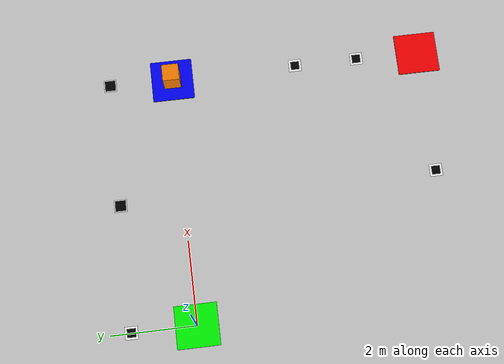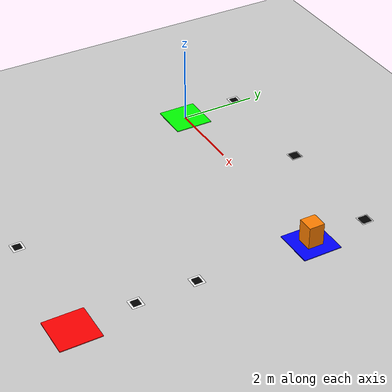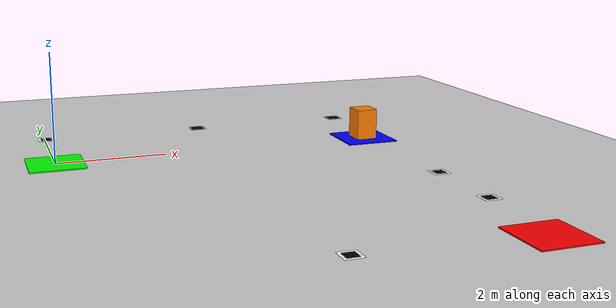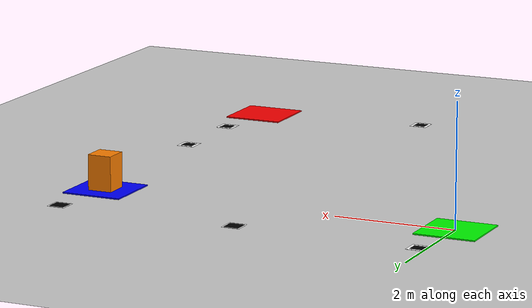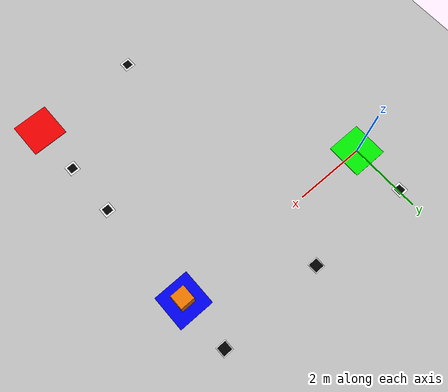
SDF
<?xml version="1.0"?>
<sdf version="1.6">
  <world name="docking_world">

    <!-- Physics -->
    <physics type="ode">
      <real_time_update_rate>1000.0</real_time_update_rate>
      <max_step_size>0.001</max_step_size>
    </physics>

    <!-- Lighting -->
    <include>
      <uri>model://sun</uri>
    </include>

    <!-- Ground -->
    <include>
      <uri>model://ground_plane</uri>
    </include>

    <!-- Charging Station (Green) -->
    <model name="charging_station">
      <static>true</static>
      <pose>0 0 0.01 0 0 0</pose>
      <link name="link">
        <visual name="visual">
          <geometry>
            <box><size>1 1 0.02</size></box>
          </geometry>
          <material>
            <ambient>0 1 0 1</ambient>
            <diffuse>0 1 0 1</diffuse>
          </material>
        </visual>
      </link>
    </model>

    <!-- AprilTag 0 - Charging Station -->
    <model name="tag_0">
      <static>true</static>
      <pose>0 1.5 0.1 0 0 0</pose>
      <link name="link">
        <visual name="white_background">
          <geometry>
            <box><size>0.3 0.3 0.001</size></box>
          </geometry>
          <material>
            <ambient>1 1 1 1</ambient>
            <diffuse>1 1 1 1</diffuse>
          </material>
        </visual>
        <visual name="black_pattern">
          <pose>0 0 0.001 0 0 0</pose>
          <geometry>
            <box><size>0.2 0.2 0.001</size></box>
          </geometry>
          <material>
            <ambient>0 0 0 1</ambient>
            <diffuse>0 0 0 1</diffuse>
          </material>
        </visual>
      </link>
    </model>

    <!-- AprilTag 1 - Path to Dock1 -->
    <model name="tag_1">
      <static>true</static>
      <pose>3 1.5 0.1 0 0 0</pose>
      <link name="link">
        <visual name="visual">
          <geometry>
            <box><size>0.3 0.3 0.001</size></box>
          </geometry>
          <material>
            <ambient>1 1 1 1</ambient>
            <diffuse>1 1 1 1</diffuse>
            <specular>0 0 0 1</specular>
            <emissive>0 0 0 1</emissive>
          </material>
        </visual>
        <visual name="apriltag_visual">
          <pose>0 0 0.001 0 0 0</pose>
          <geometry>
            <box><size>0.25 0.25 0.001</size></box>
          </geometry>
          <material>
            <ambient>0 0 0 1</ambient>
            <diffuse>0 0 0 1</diffuse>
          </material>
        </visual>
      </link>
    </model>

    <!-- Docking Station 1 (Blue) with Rack -->
    <model name="docking_station_1">
      <static>true</static>
      <pose>6 0 0.01 0 0 0</pose>
      <link name="link">
        <visual name="visual">
          <geometry>
            <box><size>1 1 0.02</size></box>
          </geometry>
          <material>
            <ambient>0 0 1 1</ambient>
            <diffuse>0 0 1 1</diffuse>
          </material>
        </visual>
      </link>
    </model>

    <!-- Rack at Dock1 -->
    <model name="rack">
      <pose>6 0 0.3 0 0 0</pose>
      <link name="link">
        <inertial>
          <mass>5.0</mass>
          <inertia>
            <ixx>0.1</ixx><iyy>0.1</iyy><izz>0.1</izz>
          </inertia>
        </inertial>
        <collision name="collision">
          <geometry>
            <box><size>0.4 0.4 0.6</size></box>
          </geometry>
        </collision>
        <visual name="visual">
          <geometry>
            <box><size>0.4 0.4 0.6</size></box>
          </geometry>
          <material>
            <ambient>1 0.5 0 1</ambient>
            <diffuse>1 0.5 0 1</diffuse>
          </material>
        </visual>
      </link>
    </model>

    <!-- AprilTag 2 - At Dock1 -->
    <model name="tag_2">
      <static>true</static>
      <pose>6 1.5 0.1 0 0 0</pose>
      <link name="link">
        <visual name="visual">
          <geometry>
            <box><size>0.3 0.3 0.001</size></box>
          </geometry>
          <material>
            <ambient>1 1 1 1</ambient>
            <diffuse>1 1 1 1</diffuse>
          </material>
        </visual>
        <visual name="apriltag_visual">
          <pose>0 0 0.001 0 0 0</pose>
          <geometry>
            <box><size>0.25 0.25 0.001</size></box>
          </geometry>
          <material>
            <ambient>0 0 0 1</ambient>
            <diffuse>0 0 0 1</diffuse>
          </material>
        </visual>
      </link>
    </model>

    <!-- AprilTag 3 - Path to Dock2 -->
    <model name="tag_3">
      <static>true</static>
      <pose>6 -3 0.1 0 0 0</pose>
      <link name="link">
        <visual name="white_background">
          <geometry>
            <box><size>0.3 0.3 0.001</size></box>
          </geometry>
          <material>
            <ambient>1 1 1 1</ambient>
            <diffuse>1 1 1 1</diffuse>
          </material>
        </visual>
        <visual name="black_pattern">
          <pose>0 0 0.001 0 0 0</pose>
          <geometry>
            <box><size>0.2 0.2 0.001</size></box>
          </geometry>
          <material>
            <ambient>0 0 0 1</ambient>
            <diffuse>0 0 0 1</diffuse>
          </material>
        </visual>
      </link>
    </model>

    <!-- Docking Station 2 (Red) -->
    <model name="docking_station_2">
      <static>true</static>
      <pose>6 -6 0.01 0 0 0</pose>
      <link name="link">
        <visual name="visual">
          <geometry>
            <box><size>1 1 0.02</size></box>
          </geometry>
          <material>
            <ambient>1 0 0 1</ambient>
            <diffuse>1 0 0 1</diffuse>
          </material>
        </visual>
      </link>
    </model>

    <!-- AprilTag 4 - At Dock2 -->
    <model name="tag_4">
      <static>true</static>
      <pose>6 -4.5 0.1 0 0 0</pose>
      <link name="link">
        <visual name="white_background">
          <geometry>
            <box><size>0.3 0.3 0.001</size></box>
          </geometry>
          <material>
            <ambient>1 1 1 1</ambient>
            <diffuse>1 1 1 1</diffuse>
          </material>
        </visual>
        <visual name="black_pattern">
          <pose>0 0 0.001 0 0 0</pose>
          <geometry>
            <box><size>0.2 0.2 0.001</size></box>
          </geometry>
          <material>
            <ambient>0 0 0 1</ambient>
            <diffuse>0 0 0 1</diffuse>
          </material>
        </visual>
      </link>
    </model>

    <!-- AprilTag 5 - Return path -->
    <model name="tag_5">
      <static>true</static>
      <pose>3 -6 0.1 0 0 0</pose>
      <link name="link">
        <visual name="white_background">
          <geometry>
            <box><size>0.3 0.3 0.001</size></box>
          </geometry>
          <material>
            <ambient>1 1 1 1</ambient>
            <diffuse>1 1 1 1</diffuse>
          </material>
        </visual>
        <visual name="black_pattern">
          <pose>0 0 0.001 0 0 0</pose>
          <geometry>
            <box><size>0.2 0.2 0.001</size></box>
          </geometry>
          <material>
            <ambient>0 0 0 1</ambient>
            <diffuse>0 0 0 1</diffuse>
          </material>
        </visual>
      </link>
    </model>

  </world>
</sdf>
